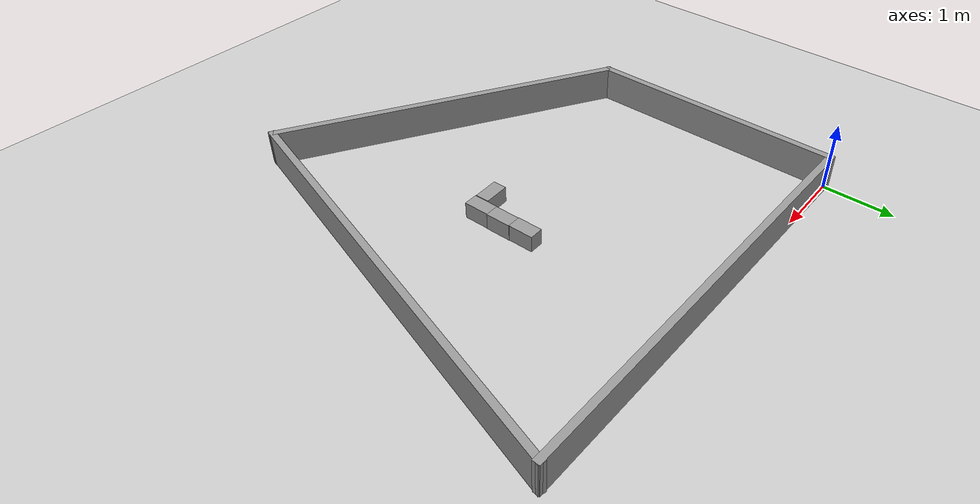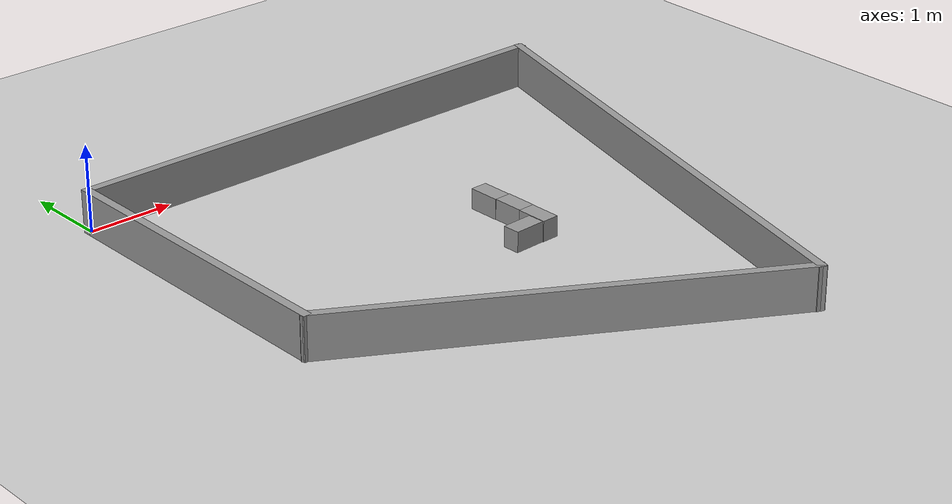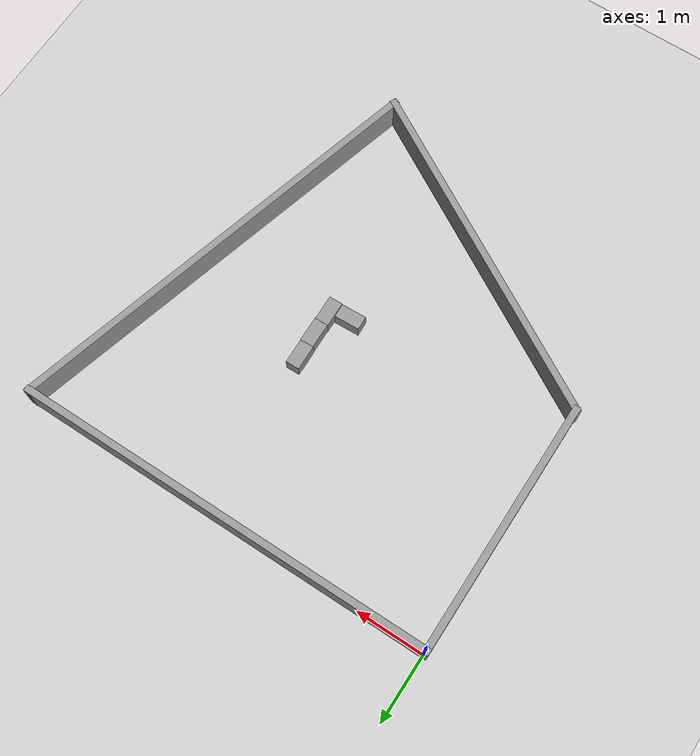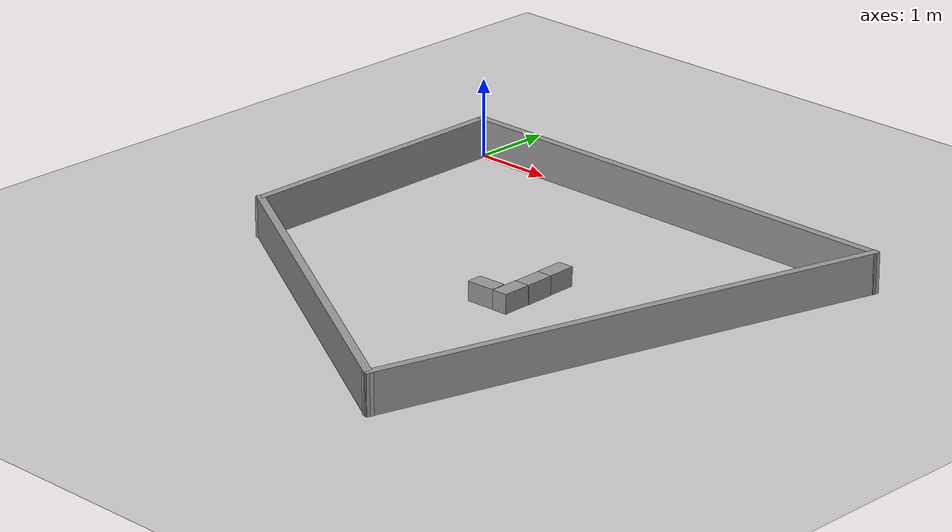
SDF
<sdf version="1.6">
 <world name="default">
  <light name="sun" type="directional">
   <pose>0 0 10 0 -0 0</pose>
   <diffuse>0.8 0.8 0.8 1</diffuse>
   <specular>0.2 0.2 0.2 1</specular>
   <attenuation>
    <range>1000</range>
    <constant>0.9</constant>
    <linear>0.01</linear>
    <quadratic>0.001</quadratic>
   </attenuation>
   <direction>-0.5 0.1 -0.9</direction>
  </light>
  <model name="ground_plane">
   <static>1</static>
   <link name="link">
    <collision name="collision">
     <geometry><plane><normal>0 0 1</normal><size>100 100</size></plane></geometry>
     <surface>
      <contact><collide_bitmask>65535</collide_bitmask></contact>
      <friction><ode><mu>100</mu><mu2>50</mu2></ode></friction>
     </surface>
    </collision>
    <visual name="visual">
     <cast_shadows>0</cast_shadows>
     <geometry><plane><normal>0 0 1</normal><size>100 100</size></plane></geometry>
     <material>
      <script><uri>file://media/materials/scripts/gazebo.material</uri><name>Gazebo/Grey</name></script>
     </material>
    </visual>
   </link>
  </model>
  <gravity>0 0 -9.8</gravity>
  <magnetic_field>6e-06 2.3e-05 -4.2e-05</magnetic_field>
  <atmosphere type="adiabatic"/>
  <physics name="default_physics" default="0" type="ode">
   <max_step_size>0.001</max_step_size>
   <real_time_factor>1</real_time_factor>
   <real_time_update_rate>1000</real_time_update_rate>
  </physics>
  <scene><ambient>0.4 0.4 0.4 1</ambient><background>0.7 0.7 0.7 1</background><shadows>1</shadows></scene>
  <audio><device>default</device></audio>
  <spherical_coordinates>
   <surface_model>EARTH_WGS84</surface_model>
   <latitude_deg>0</latitude_deg>
   <longitude_deg>0</longitude_deg>
   <elevation>0</elevation>
   <heading_deg>0</heading_deg>
  </spherical_coordinates>
  <model name="arena">
   <pose>3.05242 -3.13782 0 0 0 -1.57181</pose>
   <link name="Wall_13">
    <collision name="Wall_13_Collision">
     <geometry><box><size>3.78 0.1 0.5</size></box></geometry>
     <pose>0 0 0.25 0 -0 0</pose>
    </collision>
    <visual name="Wall_13_Visual">
     <pose>0 0 0.25 0 -0 0</pose>
     <geometry><box><size>3.78 0.1 0.5</size></box></geometry>
     <material>
      <script><uri>file://media/materials/scripts/gazebo.material</uri><name>Gazebo/Grey</name></script>
      <ambient>1 1 1 1</ambient>
     </material>
     <meta><layer>0</layer></meta>
    </visual>
    <pose>-1.28591 -3.07161 0 0 -0 3.14159</pose>
   </link>
   <link name="Wall_17">
    <collision name="Wall_17_Collision">
     <geometry><box><size>6.25 0.1 0.5</size></box></geometry>
     <pose>0 0 0.25 0 -0 0</pose>
    </collision>
    <visual name="Wall_17_Visual">
     <pose>0 0 0.25 0 -0 0</pose>
     <geometry><box><size>6.25 0.1 0.5</size></box></geometry>
     <material>
      <script><uri>file://media/materials/scripts/gazebo.material</uri><name>Gazebo/Grey</name></script>
      <ambient>1 1 1 1</ambient>
     </material>
     <meta><layer>0</layer></meta>
    </visual>
    <pose>-3.12591 0.003389 0 0 -0 1.5708</pose>
   </link>
   <link name="Wall_19">
    <collision name="Wall_19_Collision">
     <geometry><box><size>5.23 0.1 0.5</size></box></geometry>
     <pose>0 0 0.25 0 -0 0</pose>
    </collision>
    <visual name="Wall_19_Visual">
     <pose>0 0 0.25 0 -0 0</pose>
     <geometry><box><size>5.23 0.1 0.5</size></box></geometry>
     <material>
      <script><uri>file://media/materials/scripts/gazebo.material</uri><name>Gazebo/Grey</name></script>
      <ambient>1 1 1 1</ambient>
     </material>
     <meta><layer>0</layer></meta>
    </visual>
    <pose>1.83659 -0.850111 0 0 -0 1.04723</pose>
   </link>
   <link name="Wall_21">
    <collision name="Wall_21_Collision">
     <geometry><box><size>6.57409 0.1 0.5</size></box></geometry>
     <pose>0 0 0.25 0 -0 0</pose>
    </collision>
    <visual name="Wall_21_Visual">
     <pose>0 0 0.25 0 -0 0</pose>
     <geometry><box><size>6.57409 0.1 0.5</size></box></geometry>
     <material>
      <script><uri>file://media/materials/scripts/gazebo.material</uri><name>Gazebo/Grey</name></script>
      <ambient>1 1 1 1</ambient>
     </material>
     <meta><layer>0</layer></meta>
    </visual>
    <pose>-0.003412 2.22489 0 0 -0 2.87477</pose>
   </link>
   <static>1</static>
  </model>
  <model name="arena_0">
   <link name="link_1">
    <inertial>
     <mass>1</mass>
     <inertia>
      <ixx>0.166667</ixx>
      <ixy>0</ixy>
      <ixz>0</ixz>
      <iyy>0.166667</iyy>
      <iyz>0</iyz>
      <izz>0.166667</izz>
     </inertia>
     <pose>0 0 1 0 -0 0</pose>
    </inertial>
    <pose>0.255523 0.07239 -0 0 -0 0</pose>
    <visual name="visual">
     <geometry><box><size>0.37 0.2 0.24</size></box></geometry>
     <material>
      <lighting>1</lighting>
      <script><uri>file://media/materials/scripts/gazebo.material</uri><name>Gazebo/Grey</name></script>
      <shader type="vertex"><normal_map>__default__</normal_map></shader>
      <ambient>0.3 0.3 0.3 1</ambient>
      <diffuse>0.7 0.7 0.7 1</diffuse>
      <specular>0.01 0.01 0.01 1</specular>
      <emissive>0 0 0 1</emissive>
     </material>
    </visual>
    <collision name="collision">
     <geometry><box><size>0.37 0.2 0.24</size></box></geometry>
     <surface>
      <friction>
       <ode><mu>1</mu><mu2>1</mu2><fdir1>0 0 0</fdir1><slip1>0</slip1><slip2>0</slip2></ode>
       <torsional>
        <coefficient>1</coefficient>
        <patch_radius>0</patch_radius>
        <surface_radius>0</surface_radius>
        <use_patch_radius>1</use_patch_radius>
        <ode><slip>0</slip></ode>
       </torsional>
      </friction>
      <bounce><restitution_coefficient>0</restitution_coefficient><threshold>1e+06</threshold></bounce>
      <contact>
       <collide_without_contact>0</collide_without_contact>
       <collide_without_contact_bitmask>1</collide_without_contact_bitmask>
       <collide_bitmask>1</collide_bitmask>
       <ode>
        <soft_cfm>0</soft_cfm>
        <soft_erp>0.2</soft_erp>
        <kp>1e+13</kp>
        <kd>1</kd>
        <max_vel>0.01</max_vel>
        <min_depth>0</min_depth>
       </ode>
       <bullet>
        <split_impulse>1</split_impulse>
        <split_impulse_penetration_threshold>-0.01</split_impulse_penetration_threshold>
        <soft_cfm>0</soft_cfm>
        <soft_erp>0.2</soft_erp>
        <kp>1e+13</kp>
        <kd>1</kd>
       </bullet>
      </contact>
     </surface>
    </collision>
   </link>
   <link name="link_1_clone">
    <inertial>
     <mass>1</mass>
     <inertia>
      <ixx>0.166667</ixx>
      <ixy>0</ixy>
      <ixz>0</ixz>
      <iyy>0.166667</iyy>
      <iyz>0</iyz>
      <izz>0.166667</izz>
     </inertia>
     <pose>0 0 1 0 -0 0</pose>
    </inertial>
    <pose>-0.114569 0.07731 0 0 -0 0</pose>
    <visual name="visual">
     <geometry><box><size>0.37 0.2 0.24</size></box></geometry>
     <material>
      <lighting>1</lighting>
      <script><uri>file://media/materials/scripts/gazebo.material</uri><name>Gazebo/Grey</name></script>
      <shader type="vertex"><normal_map>__default__</normal_map></shader>
      <ambient>0.3 0.3 0.3 1</ambient>
      <diffuse>0.7 0.7 0.7 1</diffuse>
      <specular>0.01 0.01 0.01 1</specular>
      <emissive>0 0 0 1</emissive>
     </material>
    </visual>
    <collision name="collision">
     <geometry><box><size>0.37 0.2 0.24</size></box></geometry>
     <surface>
      <friction>
       <ode><mu>1</mu><mu2>1</mu2><fdir1>0 0 0</fdir1><slip1>0</slip1><slip2>0</slip2></ode>
       <torsional>
        <coefficient>1</coefficient>
        <patch_radius>0</patch_radius>
        <surface_radius>0</surface_radius>
        <use_patch_radius>1</use_patch_radius>
        <ode><slip>0</slip></ode>
       </torsional>
      </friction>
      <bounce><restitution_coefficient>0</restitution_coefficient><threshold>1e+06</threshold></bounce>
      <contact>
       <collide_without_contact>0</collide_without_contact>
       <collide_without_contact_bitmask>1</collide_without_contact_bitmask>
       <collide_bitmask>1</collide_bitmask>
       <ode>
        <soft_cfm>0</soft_cfm>
        <soft_erp>0.2</soft_erp>
        <kp>1e+13</kp>
        <kd>1</kd>
        <max_vel>0.01</max_vel>
        <min_depth>0</min_depth>
       </ode>
       <bullet>
        <split_impulse>1</split_impulse>
        <split_impulse_penetration_threshold>-0.01</split_impulse_penetration_threshold>
        <soft_cfm>0</soft_cfm>
        <soft_erp>0.2</soft_erp>
        <kp>1e+13</kp>
        <kd>1</kd>
       </bullet>
      </contact>
     </surface>
    </collision>
   </link>
   <link name="link_1_clone_0">
    <inertial>
     <mass>1</mass>
     <inertia>
      <ixx>0.166667</ixx>
      <ixy>0</ixy>
      <ixz>0</ixz>
      <iyy>0.166667</iyy>
      <iyz>0</iyz>
      <izz>0.166667</izz>
     </inertia>
     <pose>0 0 1 0 -0 0</pose>
    </inertial>
    <pose>-0.479544 0.071701 0 0 -0 0</pose>
    <visual name="visual">
     <geometry><box><size>0.37 0.2 0.24</size></box></geometry>
     <material>
      <lighting>1</lighting>
      <script><uri>file://media/materials/scripts/gazebo.material</uri><name>Gazebo/Grey</name></script>
      <shader type="vertex"><normal_map>__default__</normal_map></shader>
      <ambient>0.3 0.3 0.3 1</ambient>
      <diffuse>0.7 0.7 0.7 1</diffuse>
      <specular>0.01 0.01 0.01 1</specular>
      <emissive>0 0 0 1</emissive>
     </material>
    </visual>
    <collision name="collision">
     <geometry><box><size>0.37 0.2 0.24</size></box></geometry>
     <surface>
      <friction>
       <ode><mu>1</mu><mu2>1</mu2><fdir1>0 0 0</fdir1><slip1>0</slip1><slip2>0</slip2></ode>
       <torsional>
        <coefficient>1</coefficient>
        <patch_radius>0</patch_radius>
        <surface_radius>0</surface_radius>
        <use_patch_radius>1</use_patch_radius>
        <ode><slip>0</slip></ode>
       </torsional>
      </friction>
      <bounce><restitution_coefficient>0</restitution_coefficient><threshold>1e+06</threshold></bounce>
      <contact>
       <collide_without_contact>0</collide_without_contact>
       <collide_without_contact_bitmask>1</collide_without_contact_bitmask>
       <collide_bitmask>1</collide_bitmask>
       <ode>
        <soft_cfm>0</soft_cfm>
        <soft_erp>0.2</soft_erp>
        <kp>1e+13</kp>
        <kd>1</kd>
        <max_vel>0.01</max_vel>
        <min_depth>0</min_depth>
       </ode>
       <bullet>
        <split_impulse>1</split_impulse>
        <split_impulse_penetration_threshold>-0.01</split_impulse_penetration_threshold>
        <soft_cfm>0</soft_cfm>
        <soft_erp>0.2</soft_erp>
        <kp>1e+13</kp>
        <kd>1</kd>
       </bullet>
      </contact>
     </surface>
    </collision>
   </link>
   <link name="link_1_clone_1">
    <inertial>
     <mass>1</mass>
     <inertia>
      <ixx>0.166667</ixx>
      <ixy>0</ixy>
      <ixz>0</ixz>
      <iyy>0.166667</iyy>
      <iyz>0</iyz>
      <izz>0.166667</izz>
     </inertia>
     <pose>0 0 1 0 -0 0</pose>
    </inertial>
    <pose>0.338588 -0.221404 0 0 0 -1.54956</pose>
    <visual name="visual">
     <geometry><box><size>0.37 0.2 0.24</size></box></geometry>
     <material>
      <lighting>1</lighting>
      <script><uri>file://media/materials/scripts/gazebo.material</uri><name>Gazebo/Grey</name></script>
      <shader type="vertex"><normal_map>__default__</normal_map></shader>
      <ambient>0.3 0.3 0.3 1</ambient>
      <diffuse>0.7 0.7 0.7 1</diffuse>
      <specular>0.01 0.01 0.01 1</specular>
      <emissive>0 0 0 1</emissive>
     </material>
    </visual>
    <collision name="collision">
     <geometry><box><size>0.37 0.2 0.24</size></box></geometry>
     <surface>
      <friction>
       <ode><mu>1</mu><mu2>1</mu2><fdir1>0 0 0</fdir1><slip1>0</slip1><slip2>0</slip2></ode>
       <torsional>
        <coefficient>1</coefficient>
        <patch_radius>0</patch_radius>
        <surface_radius>0</surface_radius>
        <use_patch_radius>1</use_patch_radius>
        <ode><slip>0</slip></ode>
       </torsional>
      </friction>
      <bounce><restitution_coefficient>0</restitution_coefficient><threshold>1e+06</threshold></bounce>
      <contact>
       <collide_without_contact>0</collide_without_contact>
       <collide_without_contact_bitmask>1</collide_without_contact_bitmask>
       <collide_bitmask>1</collide_bitmask>
       <ode>
        <soft_cfm>0</soft_cfm>
        <soft_erp>0.2</soft_erp>
        <kp>1e+13</kp>
        <kd>1</kd>
        <max_vel>0.01</max_vel>
        <min_depth>0</min_depth>
       </ode>
       <bullet>
        <split_impulse>1</split_impulse>
        <split_impulse_penetration_threshold>-0.01</split_impulse_penetration_threshold>
        <soft_cfm>0</soft_cfm>
        <soft_erp>0.2</soft_erp>
        <kp>1e+13</kp>
        <kd>1</kd>
       </bullet>
      </contact>
     </surface>
    </collision>
   </link>
   <static>0</static>
   <pose>3.42807 -2.90898 0.12 0 -1e-06 -1.55026</pose>
  </model>
 </world>
</sdf>
